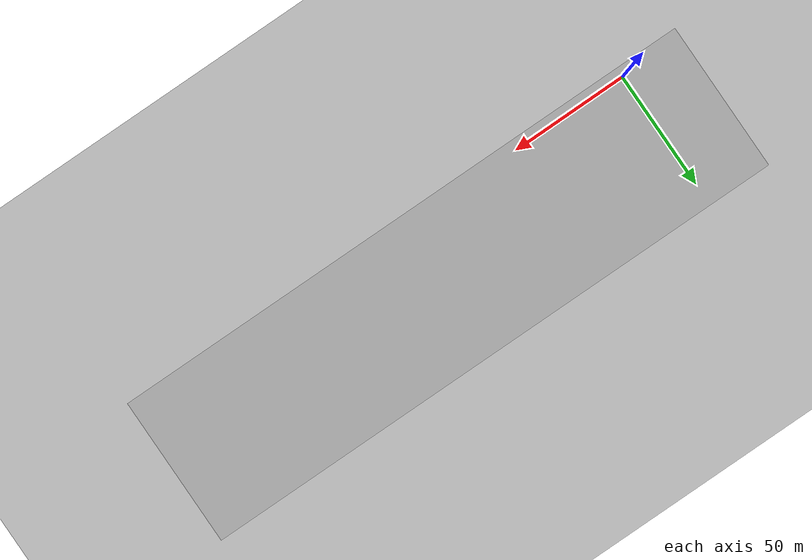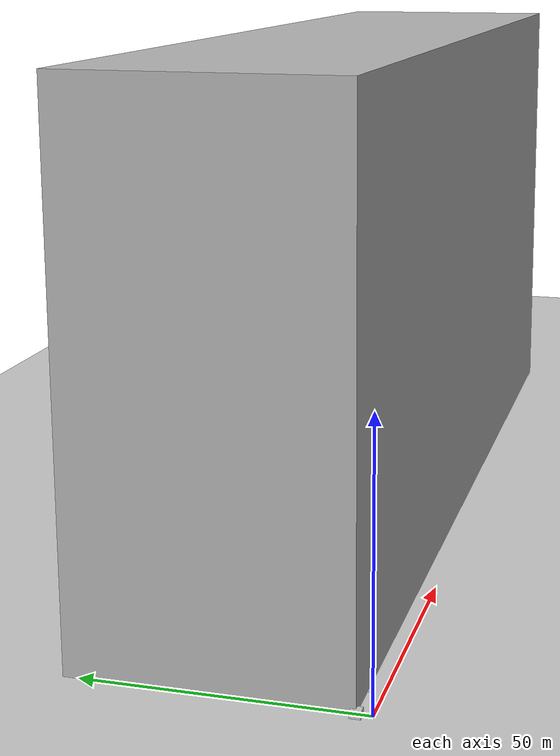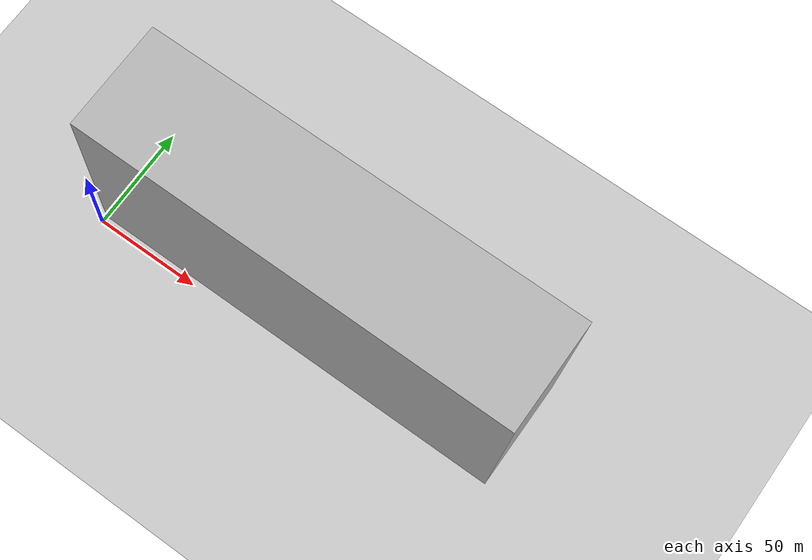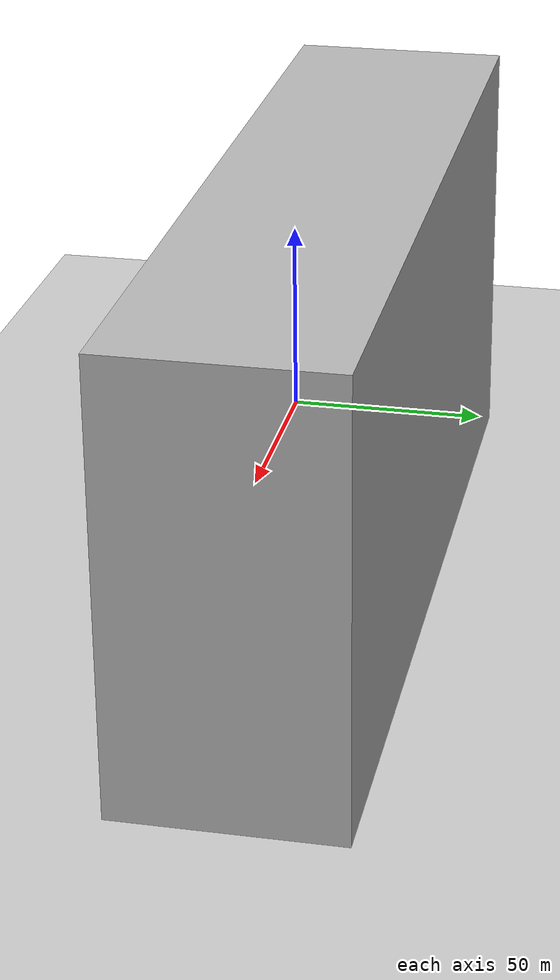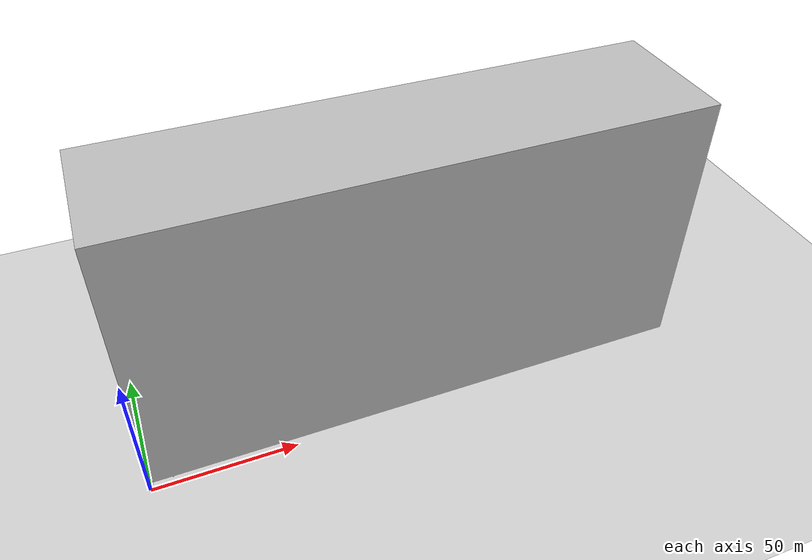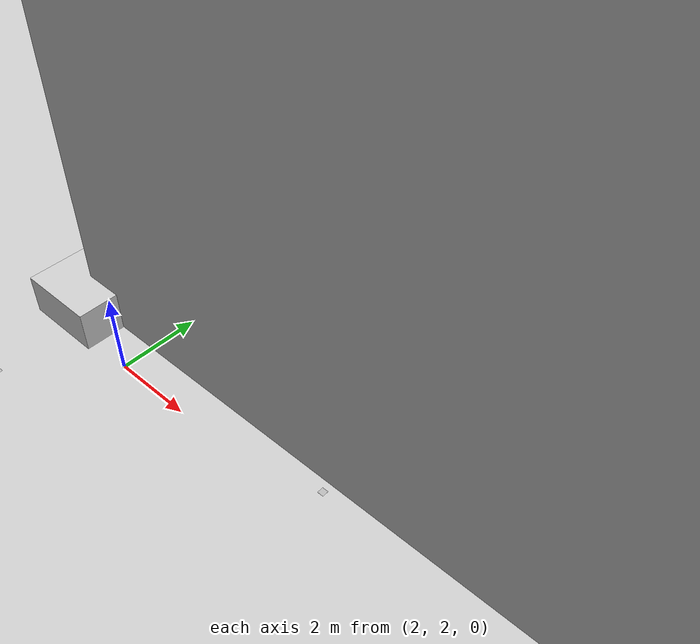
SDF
<sdf version="1.10">
 <world name="tmr25_izt">
  <physics type="ode">
   <max_step_size>0.0040000000000000001</max_step_size>
   <real_time_factor>1</real_time_factor>
   <real_time_update_rate>250</real_time_update_rate>
  </physics>
  <plugin name="gz::sim::systems::Physics" filename="gz-sim-physics-system"/>
  <plugin name="gz::sim::systems::UserCommands" filename="gz-sim-user-commands-system"/>
  <plugin name="gz::sim::systems::SceneBroadcaster" filename="gz-sim-scene-broadcaster-system"/>
  <plugin name="gz::sim::systems::Contact" filename="gz-sim-contact-system"/>
  <plugin name="gz::sim::systems::Imu" filename="gz-sim-imu-system"/>
  <plugin name="gz::sim::systems::AirPressure" filename="gz-sim-air-pressure-system"/>
  <plugin name="gz::sim::systems::AirSpeed" filename="gz-sim-air-speed-system"/>
  <plugin name="gz::sim::systems::ApplyLinkWrench" filename="gz-sim-apply-link-wrench-system"/>
  <plugin name="gz::sim::systems::NavSat" filename="gz-sim-navsat-system"/>
  <plugin name="gz::sim::systems::Sensors" filename="gz-sim-sensors-system">
   <render_engine>ogre2</render_engine>
  </plugin>
  <gravity>0 0 -9.8000000000000007</gravity>
  <magnetic_field>6.0000000000000002e-06 2.3e-05 -4.1999999999999998e-05</magnetic_field>
  <atmosphere type="adiabatic"/>
  <scene>
   <grid>false</grid>
   <ambient>0.400000006 0.400000006 0.400000006 1</ambient>
   <background>0.699999988 0.699999988 0.699999988 1</background>
   <shadows>true</shadows>
  </scene>
  <spherical_coordinates>
   <surface_model>EARTH_WGS84</surface_model>
   <world_frame_orientation>ENU</world_frame_orientation>
   <latitude_deg>47.397971057728974</latitude_deg>
   <longitude_deg>8.5461637398001464</longitude_deg>
   <elevation>0</elevation>
   <heading_deg>0</heading_deg>
  </spherical_coordinates>
  <model name="ground_plane">
   <static>true</static>
   <link name="link">
    <collision name="collision">
     <geometry><plane><normal>0 0 1</normal><size>1 1</size></plane></geometry>
    </collision>
    <visual name="visual">
     <geometry><plane><normal>0 0 1</normal><size>100 100</size></plane></geometry>
     <material>
      <ambient>0.800000012 0.800000012 0.800000012 1</ambient>
      <diffuse>0.800000012 0.800000012 0.800000012 1</diffuse>
      <specular>0.800000012 0.800000012 0.800000012 1</specular>
     </material>
    </visual>
    <inertial>
     <mass>1</mass>
     <inertia><ixx>1</ixx><ixy>0</ixy><ixz>0</ixz><iyy>1</iyy><iyz>0</iyz><izz>1</izz></inertia>
    </inertial>
   </link>
  </model>
  <include>
   <uri>file:///home/rovestrada/PX4-Autopilot/Tools/simulation/gz/models/aruco_100</uri>
   <name>aruco_100</name>
   <pose>-0.0024154459870563347 -0.010033602726560995 0.01 0 0 -1.5707963267995864</pose>
  </include>
  <include>
   <uri>file:///home/rovestrada/PX4-Autopilot/Tools/simulation/gz/models/aruco_105</uri>
   <name>aruco_105</name>
   <pose>-0.0022312176168809037 4.9167917513903969 0.01 0 0 -3.1415926535895866</pose>
  </include>
  <include>
   <uri>file:///home/rovestrada/PX4-Autopilot/Tools/simulation/gz/models/aruco_200</uri>
   <name>aruco_200</name>
   <pose>2.7076667865655608 4.9175116607163591 0.01 0 0 1.57079632679</pose>
  </include>
  <include>
   <uri>file:///home/rovestrada/PX4-Autopilot/Tools/simulation/gz/models/aruco_205</uri>
   <name>aruco_205</name>
   <pose>3.6856566159562965 4.9177021253322577 0.01 0 0 0</pose>
  </include>
  <include>
   <uri>file:///home/rovestrada/PX4-Autopilot/Tools/simulation/gz/models/aruco_300</uri>
   <name>aruco_300</name>
   <pose>5.5986252551862492 4.9217072044361032 1.0055000000000001 0 0 1.57079632679</pose>
  </include>
  <include>
   <uri>file:///home/rovestrada/PX4-Autopilot/Tools/simulation/gz/models/aruco_301</uri>
   <name>aruco_301</name>
   <pose>6.6450452001115634 4.8996605790580832 1.0049999999999999 0 0 -1.5707963267995864</pose>
  </include>
  <include>
   <uri>file:///home/rovestrada/PX4-Autopilot/Tools/simulation/gz/models/aruco_302</uri>
   <name>aruco_302</name>
   <pose>7.6785889776000982 4.913059229054821 1.0049999999999999 0 0 0</pose>
  </include>
  <include>
   <uri>file:///home/rovestrada/PX4-Autopilot/Tools/simulation/gz/models/aruco_400</uri>
   <name>aruco_400</name>
   <pose>7.6763508239216707 2.5513157015213661 0.01 0 0 -1.5707963267995864</pose>
  </include>
  <include>
   <uri>file:///home/rovestrada/PX4-Autopilot/Tools/simulation/gz/models/medkit</uri>
   <name>medkit</name>
   <pose>-0.087844756310522465 2.7894694462774865 0 0 0 0</pose>
  </include>
  <light name="sunUTC" type="directional">
   <pose>0 0 500 0 0 0</pose>
   <intensity>1</intensity>
   <direction>0.001 0.625 -0.78000000000000003</direction>
   <diffuse>0.903999984 0.903999984 0.903999984 1</diffuse>
   <specular>0.270999998 0.270999998 0.270999998 1</specular>
   <attenuation><range>2000</range><linear>0</linear><constant>1</constant><quadratic>0</quadratic></attenuation>
   <spot><inner_angle>0</inner_angle><outer_angle>0</outer_angle><falloff>0</falloff></spot>
  </light>
 </world>
</sdf>

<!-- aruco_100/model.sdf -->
<sdf version="1.6">
  <model name="aruco_100">
    <pose>0 0 0.01 0 0 0</pose> <!-- Elevacion de 1 cm-->
    <static>true</static>
    <link name="link">

      <!-- Visualización del modelo -->
      <visual name="visual">
        <geometry>
          <mesh>
            <uri>model://aruco_100/meshes/aruco_100.dae</uri>
            <scale>1 1 1</scale>
          </mesh>
        </geometry>
      </visual>

      <!-- Colisión usando el mismo modelo DAE -->

    </link>
  </model>
</sdf>

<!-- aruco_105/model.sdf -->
<sdf version="1.6">
  <model name="aruco_105">
    <pose>0 0 0.01 0 0 0</pose> <!-- Elevacion de 1 cm-->
    <static>true</static>
    <link name="link">

      <!-- Visualización del modelo -->
      <visual name="visual">
        <geometry>
          <mesh>
            <uri>model://aruco_105/meshes/aruco_15_x_15.dae</uri>
            <scale>1 1 1</scale>
          </mesh>
        </geometry>
      </visual>

      <!-- Colisión usando el mismo modelo DAE -->

    </link>
  </model>
</sdf>

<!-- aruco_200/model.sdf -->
<sdf version="1.6">
  <model name="aruco_200">
    <pose>0 0 0.01 0 0 0</pose> <!-- Elevacion de 1 cm-->
    <static>true</static>
    <link name="link">

      <!-- Visualización del modelo -->
      <visual name="visual">
        <geometry>
          <mesh>
            <uri>model://aruco_200/meshes/aruco_15_x_15.dae</uri>
            <scale>1 1 1</scale>
          </mesh>
        </geometry>
      </visual>

      <!-- Colisión usando el mismo modelo DAE -->

    </link>
  </model>
</sdf>

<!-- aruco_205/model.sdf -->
<sdf version="1.6">
  <model name="aruco_205">
    <pose>0 0 0.01 0 0 0</pose> <!-- Elevacion de 1 cm-->
    <static>true</static>
    <link name="link">

      <!-- Visualización del modelo -->
      <visual name="visual">
        <geometry>
          <mesh>
            <uri>model://aruco_205/meshes/aruco_15_x_15.dae</uri>
            <scale>1 1 1</scale>
          </mesh>
        </geometry>
      </visual>

      <!-- Colisión usando el mismo modelo DAE -->

    </link>
  </model>
</sdf>

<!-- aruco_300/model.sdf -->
<sdf version="1.6">
  <model name="aruco_300">
    <pose>0 0 1.0055 0 0 0</pose>  <!-- Elevacion de un metro-->
    <static>true</static>
    <link name="link">

      <!-- Visualización del modelo -->
      <visual name="visual">
        <geometry>
          <mesh>
            <uri>model://aruco_300/meshes/aruco_15_x_15.dae</uri>
            <scale>1 1 1</scale>
          </mesh>
        </geometry>
      </visual>

      <!-- Colisión usando el mismo modelo DAE -->

    </link>
  </model>
</sdf>

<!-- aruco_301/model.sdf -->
<sdf version="1.6">
  <model name="aruco_301">
    <pose>0 0 1.005 0 0 0</pose>  <!-- Elevacion de un metro-->
    <static>true</static>
    <link name="link">

      <!-- Visualización del modelo -->
      <visual name="visual">
        <geometry>
          <mesh>
            <uri>model://aruco_301/meshes/aruco_15_x_15.dae</uri>
            <scale>1 1 1</scale>
          </mesh>
        </geometry>
      </visual>

      <!-- Colisión usando el mismo modelo DAE -->

    </link>
  </model>
</sdf>

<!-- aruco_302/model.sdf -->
<sdf version="1.6">
  <model name="aruco_302">
    <pose>0 0 1.005 0 0 0</pose>  <!-- Elevacion de un metro-->
    <static>true</static>
    <link name="link">

      <!-- Visualización del modelo -->
      <visual name="visual">
        <geometry>
          <mesh>
            <uri>model://aruco_302/meshes/aruco_15_x_15.dae</uri>
            <scale>1 1 1</scale>
          </mesh>
        </geometry>
      </visual>

      <!-- Colisión usando el mismo modelo DAE -->

    </link>
  </model>
</sdf>

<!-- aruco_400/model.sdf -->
<sdf version="1.6">
  <model name="aruco_400">
    <pose>0 0 0.01 0 0 0</pose> <!-- Elevacion de 1 cm-->
    <static>true</static>
    <link name="link">

      <!-- Visualización del modelo -->
      <visual name="visual">
        <geometry>
          <mesh>
            <uri>model://aruco_400/meshes/aruco_15_x_15.dae</uri>
            <scale>1 1 1</scale>
          </mesh>
        </geometry>
      </visual>

      <!-- Colisión usando el mismo modelo DAE -->

    </link>
  </model>
</sdf>

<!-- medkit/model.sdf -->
<sdf version="1.6">
  <model name="medkit">
    <pose>0 0 0 0 0 0</pose>
    <static>true</static>
    <link name="link">

      <!-- Visualización del modelo -->
      <visual name="visual">
        <geometry>
          <mesh>
            <uri>model://medkit/meshes/medkit.dae</uri>
            <scale>1 1 1</scale>
          </mesh>
        </geometry>
      </visual>

      <!-- Colisión usando el mismo modelo DAE -->

    </link>
  </model>
</sdf>
